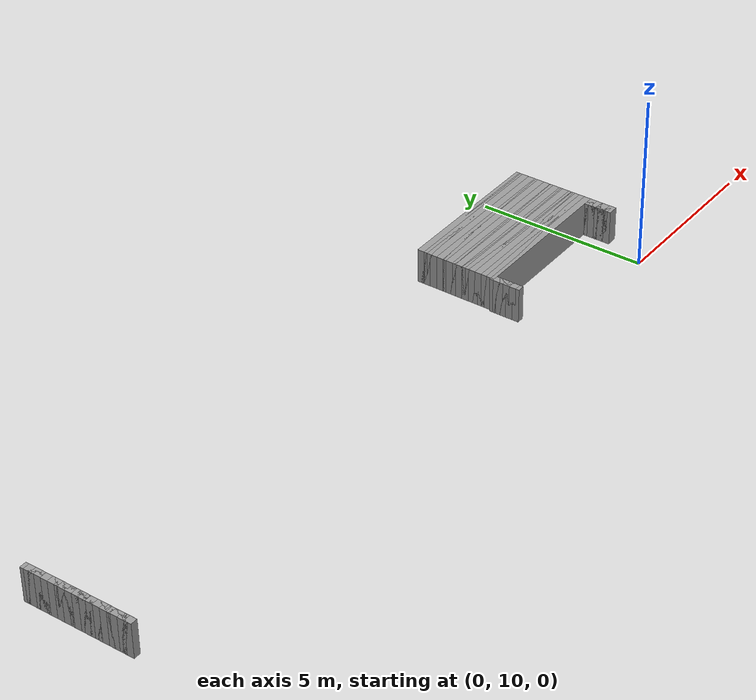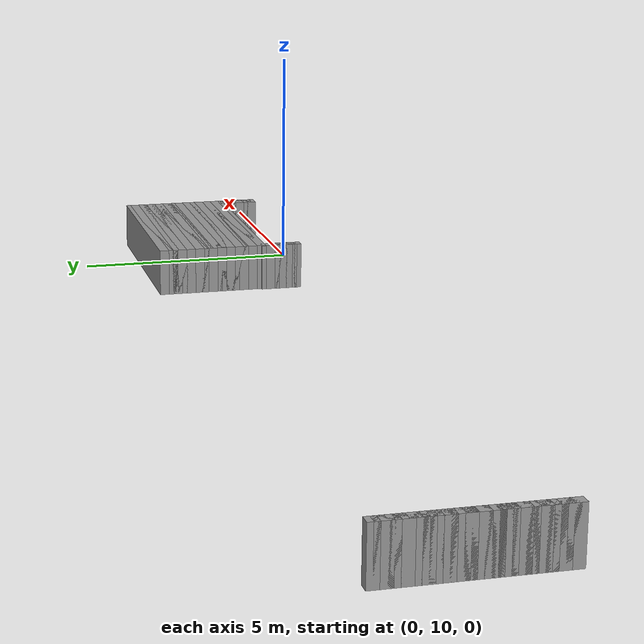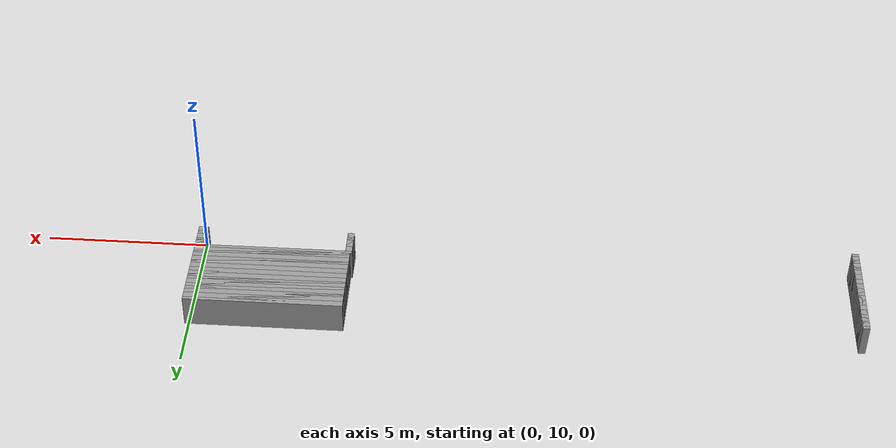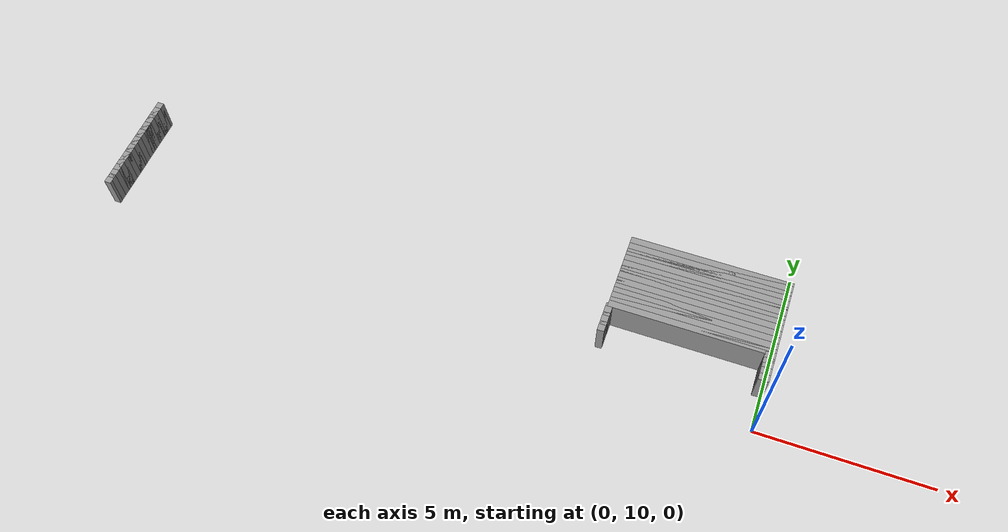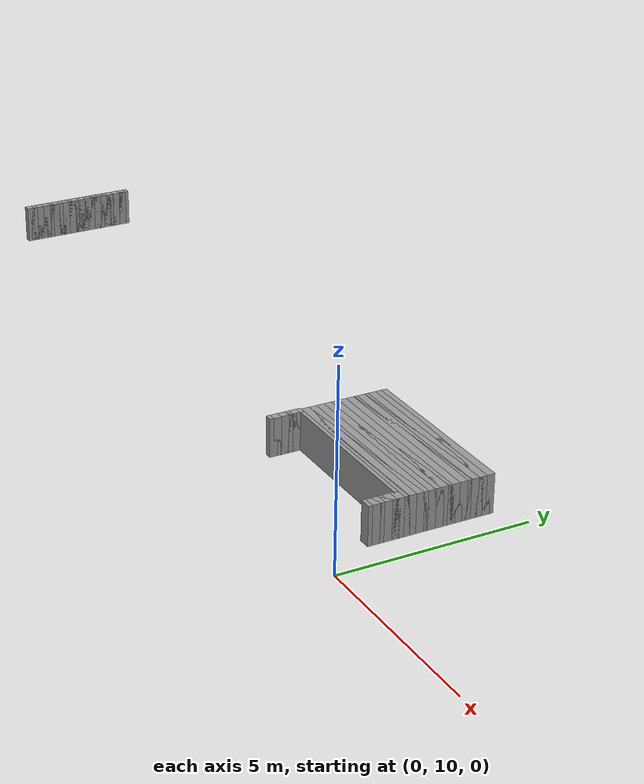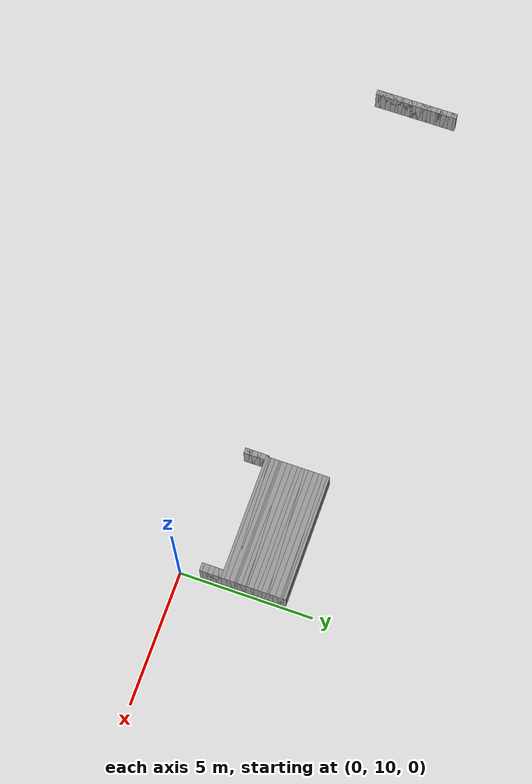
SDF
<sdf version="1.6">
 <world name="GridMap">
  <model name="GridMap">
   <link name="Wall_(198.0,108.0)">
    <collision name="Wall_(198.0,108.0)_Collision">
     <geometry><box><size>0.2 0.2 1.0</size></box></geometry>
     <pose>-19.8 10.8 0.5 0 -0 0</pose>
    </collision>
    <visual name="Wall_(198.0,108.0)_Visual">
     <geometry><box><size>0.2 0.2 1.0</size></box></geometry>
     <pose>-19.8 10.8 0.5 0 -0 0</pose>
     <material>
      <script><uri>file://media/materials/scripts/gazebo.material</uri><name>Gazebo/Grey</name></script>
      <ambient>1 1 1 1</ambient>
     </material>
     <meta><layer>0</layer></meta>
    </visual>
    <pose>0 0 0.5 0 -0 0</pose>
   </link>
   <link name="Wall_(1.5,109.0)">
    <collision name="Wall_(1.5,109.0)_Collision">
     <geometry><box><size>0.3 0.2 1.0</size></box></geometry>
     <pose>-0.15 10.9 0.5 0 -0 0</pose>
    </collision>
    <visual name="Wall_(1.5,109.0)_Visual">
     <geometry><box><size>0.3 0.2 1.0</size></box></geometry>
     <pose>-0.15 10.9 0.5 0 -0 0</pose>
     <material>
      <script><uri>file://media/materials/scripts/gazebo.material</uri><name>Gazebo/Grey</name></script>
      <ambient>1 1 1 1</ambient>
     </material>
     <meta><layer>0</layer></meta>
    </visual>
    <pose>0 0 0.5 0 -0 0</pose>
   </link>
   <link name="Wall_(46.5,109.0)">
    <collision name="Wall_(46.5,109.0)_Collision">
     <geometry><box><size>0.2 0.2 1.0</size></box></geometry>
     <pose>-4.65 10.9 0.5 0 -0 0</pose>
    </collision>
    <visual name="Wall_(46.5,109.0)_Visual">
     <geometry><box><size>0.2 0.2 1.0</size></box></geometry>
     <pose>-4.65 10.9 0.5 0 -0 0</pose>
     <material>
      <script><uri>file://media/materials/scripts/gazebo.material</uri><name>Gazebo/Grey</name></script>
      <ambient>1 1 1 1</ambient>
     </material>
     <meta><layer>0</layer></meta>
    </visual>
    <pose>0 0 0.5 0 -0 0</pose>
   </link>
   <link name="Wall_(198.0,109.0)">
    <collision name="Wall_(198.0,109.0)_Collision">
     <geometry><box><size>0.2 0.2 1.0</size></box></geometry>
     <pose>-19.8 10.9 0.5 0 -0 0</pose>
    </collision>
    <visual name="Wall_(198.0,109.0)_Visual">
     <geometry><box><size>0.2 0.2 1.0</size></box></geometry>
     <pose>-19.8 10.9 0.5 0 -0 0</pose>
     <material>
      <script><uri>file://media/materials/scripts/gazebo.material</uri><name>Gazebo/Grey</name></script>
      <ambient>1 1 1 1</ambient>
     </material>
     <meta><layer>0</layer></meta>
    </visual>
    <pose>0 0 0.5 0 -0 0</pose>
   </link>
   <link name="Wall_(1.5,110.0)">
    <collision name="Wall_(1.5,110.0)_Collision">
     <geometry><box><size>0.3 0.2 1.0</size></box></geometry>
     <pose>-0.15 11.0 0.5 0 -0 0</pose>
    </collision>
    <visual name="Wall_(1.5,110.0)_Visual">
     <geometry><box><size>0.3 0.2 1.0</size></box></geometry>
     <pose>-0.15 11.0 0.5 0 -0 0</pose>
     <material>
      <script><uri>file://media/materials/scripts/gazebo.material</uri><name>Gazebo/Grey</name></script>
      <ambient>1 1 1 1</ambient>
     </material>
     <meta><layer>0</layer></meta>
    </visual>
    <pose>0 0 0.5 0 -0 0</pose>
   </link>
   <link name="Wall_(46.5,110.0)">
    <collision name="Wall_(46.5,110.0)_Collision">
     <geometry><box><size>0.2 0.2 1.0</size></box></geometry>
     <pose>-4.65 11.0 0.5 0 -0 0</pose>
    </collision>
    <visual name="Wall_(46.5,110.0)_Visual">
     <geometry><box><size>0.2 0.2 1.0</size></box></geometry>
     <pose>-4.65 11.0 0.5 0 -0 0</pose>
     <material>
      <script><uri>file://media/materials/scripts/gazebo.material</uri><name>Gazebo/Grey</name></script>
      <ambient>1 1 1 1</ambient>
     </material>
     <meta><layer>0</layer></meta>
    </visual>
    <pose>0 0 0.5 0 -0 0</pose>
   </link>
   <link name="Wall_(198.0,110.0)">
    <collision name="Wall_(198.0,110.0)_Collision">
     <geometry><box><size>0.2 0.2 1.0</size></box></geometry>
     <pose>-19.8 11.0 0.5 0 -0 0</pose>
    </collision>
    <visual name="Wall_(198.0,110.0)_Visual">
     <geometry><box><size>0.2 0.2 1.0</size></box></geometry>
     <pose>-19.8 11.0 0.5 0 -0 0</pose>
     <material>
      <script><uri>file://media/materials/scripts/gazebo.material</uri><name>Gazebo/Grey</name></script>
      <ambient>1 1 1 1</ambient>
     </material>
     <meta><layer>0</layer></meta>
    </visual>
    <pose>0 0 0.5 0 -0 0</pose>
   </link>
   <link name="Wall_(1.5,111.0)">
    <collision name="Wall_(1.5,111.0)_Collision">
     <geometry><box><size>0.3 0.2 1.0</size></box></geometry>
     <pose>-0.15 11.1 0.5 0 -0 0</pose>
    </collision>
    <visual name="Wall_(1.5,111.0)_Visual">
     <geometry><box><size>0.3 0.2 1.0</size></box></geometry>
     <pose>-0.15 11.1 0.5 0 -0 0</pose>
     <material>
      <script><uri>file://media/materials/scripts/gazebo.material</uri><name>Gazebo/Grey</name></script>
      <ambient>1 1 1 1</ambient>
     </material>
     <meta><layer>0</layer></meta>
    </visual>
    <pose>0 0 0.5 0 -0 0</pose>
   </link>
   <link name="Wall_(46.5,111.0)">
    <collision name="Wall_(46.5,111.0)_Collision">
     <geometry><box><size>0.2 0.2 1.0</size></box></geometry>
     <pose>-4.65 11.1 0.5 0 -0 0</pose>
    </collision>
    <visual name="Wall_(46.5,111.0)_Visual">
     <geometry><box><size>0.2 0.2 1.0</size></box></geometry>
     <pose>-4.65 11.1 0.5 0 -0 0</pose>
     <material>
      <script><uri>file://media/materials/scripts/gazebo.material</uri><name>Gazebo/Grey</name></script>
      <ambient>1 1 1 1</ambient>
     </material>
     <meta><layer>0</layer></meta>
    </visual>
    <pose>0 0 0.5 0 -0 0</pose>
   </link>
   <link name="Wall_(198.0,111.0)">
    <collision name="Wall_(198.0,111.0)_Collision">
     <geometry><box><size>0.2 0.2 1.0</size></box></geometry>
     <pose>-19.8 11.1 0.5 0 -0 0</pose>
    </collision>
    <visual name="Wall_(198.0,111.0)_Visual">
     <geometry><box><size>0.2 0.2 1.0</size></box></geometry>
     <pose>-19.8 11.1 0.5 0 -0 0</pose>
     <material>
      <script><uri>file://media/materials/scripts/gazebo.material</uri><name>Gazebo/Grey</name></script>
      <ambient>1 1 1 1</ambient>
     </material>
     <meta><layer>0</layer></meta>
    </visual>
    <pose>0 0 0.5 0 -0 0</pose>
   </link>
   <link name="Wall_(1.5,112.0)">
    <collision name="Wall_(1.5,112.0)_Collision">
     <geometry><box><size>0.3 0.2 1.0</size></box></geometry>
     <pose>-0.15 11.2 0.5 0 -0 0</pose>
    </collision>
    <visual name="Wall_(1.5,112.0)_Visual">
     <geometry><box><size>0.3 0.2 1.0</size></box></geometry>
     <pose>-0.15 11.2 0.5 0 -0 0</pose>
     <material>
      <script><uri>file://media/materials/scripts/gazebo.material</uri><name>Gazebo/Grey</name></script>
      <ambient>1 1 1 1</ambient>
     </material>
     <meta><layer>0</layer></meta>
    </visual>
    <pose>0 0 0.5 0 -0 0</pose>
   </link>
   <link name="Wall_(46.5,112.0)">
    <collision name="Wall_(46.5,112.0)_Collision">
     <geometry><box><size>0.2 0.2 1.0</size></box></geometry>
     <pose>-4.65 11.2 0.5 0 -0 0</pose>
    </collision>
    <visual name="Wall_(46.5,112.0)_Visual">
     <geometry><box><size>0.2 0.2 1.0</size></box></geometry>
     <pose>-4.65 11.2 0.5 0 -0 0</pose>
     <material>
      <script><uri>file://media/materials/scripts/gazebo.material</uri><name>Gazebo/Grey</name></script>
      <ambient>1 1 1 1</ambient>
     </material>
     <meta><layer>0</layer></meta>
    </visual>
    <pose>0 0 0.5 0 -0 0</pose>
   </link>
   <link name="Wall_(198.0,112.0)">
    <collision name="Wall_(198.0,112.0)_Collision">
     <geometry><box><size>0.2 0.2 1.0</size></box></geometry>
     <pose>-19.8 11.2 0.5 0 -0 0</pose>
    </collision>
    <visual name="Wall_(198.0,112.0)_Visual">
     <geometry><box><size>0.2 0.2 1.0</size></box></geometry>
     <pose>-19.8 11.2 0.5 0 -0 0</pose>
     <material>
      <script><uri>file://media/materials/scripts/gazebo.material</uri><name>Gazebo/Grey</name></script>
      <ambient>1 1 1 1</ambient>
     </material>
     <meta><layer>0</layer></meta>
    </visual>
    <pose>0 0 0.5 0 -0 0</pose>
   </link>
   <link name="Wall_(1.5,113.0)">
    <collision name="Wall_(1.5,113.0)_Collision">
     <geometry><box><size>0.3 0.2 1.0</size></box></geometry>
     <pose>-0.15 11.3 0.5 0 -0 0</pose>
    </collision>
    <visual name="Wall_(1.5,113.0)_Visual">
     <geometry><box><size>0.3 0.2 1.0</size></box></geometry>
     <pose>-0.15 11.3 0.5 0 -0 0</pose>
     <material>
      <script><uri>file://media/materials/scripts/gazebo.material</uri><name>Gazebo/Grey</name></script>
      <ambient>1 1 1 1</ambient>
     </material>
     <meta><layer>0</layer></meta>
    </visual>
    <pose>0 0 0.5 0 -0 0</pose>
   </link>
   <link name="Wall_(46.5,113.0)">
    <collision name="Wall_(46.5,113.0)_Collision">
     <geometry><box><size>0.2 0.2 1.0</size></box></geometry>
     <pose>-4.65 11.3 0.5 0 -0 0</pose>
    </collision>
    <visual name="Wall_(46.5,113.0)_Visual">
     <geometry><box><size>0.2 0.2 1.0</size></box></geometry>
     <pose>-4.65 11.3 0.5 0 -0 0</pose>
     <material>
      <script><uri>file://media/materials/scripts/gazebo.material</uri><name>Gazebo/Grey</name></script>
      <ambient>1 1 1 1</ambient>
     </material>
     <meta><layer>0</layer></meta>
    </visual>
    <pose>0 0 0.5 0 -0 0</pose>
   </link>
   <link name="Wall_(198.0,113.0)">
    <collision name="Wall_(198.0,113.0)_Collision">
     <geometry><box><size>0.2 0.2 1.0</size></box></geometry>
     <pose>-19.8 11.3 0.5 0 -0 0</pose>
    </collision>
    <visual name="Wall_(198.0,113.0)_Visual">
     <geometry><box><size>0.2 0.2 1.0</size></box></geometry>
     <pose>-19.8 11.3 0.5 0 -0 0</pose>
     <material>
      <script><uri>file://media/materials/scripts/gazebo.material</uri><name>Gazebo/Grey</name></script>
      <ambient>1 1 1 1</ambient>
     </material>
     <meta><layer>0</layer></meta>
    </visual>
    <pose>0 0 0.5 0 -0 0</pose>
   </link>
   <link name="Wall_(1.5,114.0)">
    <collision name="Wall_(1.5,114.0)_Collision">
     <geometry><box><size>0.3 0.2 1.0</size></box></geometry>
     <pose>-0.15 11.4 0.5 0 -0 0</pose>
    </collision>
    <visual name="Wall_(1.5,114.0)_Visual">
     <geometry><box><size>0.3 0.2 1.0</size></box></geometry>
     <pose>-0.15 11.4 0.5 0 -0 0</pose>
     <material>
      <script><uri>file://media/materials/scripts/gazebo.material</uri><name>Gazebo/Grey</name></script>
      <ambient>1 1 1 1</ambient>
     </material>
     <meta><layer>0</layer></meta>
    </visual>
    <pose>0 0 0.5 0 -0 0</pose>
   </link>
   <link name="Wall_(46.5,114.0)">
    <collision name="Wall_(46.5,114.0)_Collision">
     <geometry><box><size>0.2 0.2 1.0</size></box></geometry>
     <pose>-4.65 11.4 0.5 0 -0 0</pose>
    </collision>
    <visual name="Wall_(46.5,114.0)_Visual">
     <geometry><box><size>0.2 0.2 1.0</size></box></geometry>
     <pose>-4.65 11.4 0.5 0 -0 0</pose>
     <material>
      <script><uri>file://media/materials/scripts/gazebo.material</uri><name>Gazebo/Grey</name></script>
      <ambient>1 1 1 1</ambient>
     </material>
     <meta><layer>0</layer></meta>
    </visual>
    <pose>0 0 0.5 0 -0 0</pose>
   </link>
   <link name="Wall_(198.0,114.0)">
    <collision name="Wall_(198.0,114.0)_Collision">
     <geometry><box><size>0.2 0.2 1.0</size></box></geometry>
     <pose>-19.8 11.4 0.5 0 -0 0</pose>
    </collision>
    <visual name="Wall_(198.0,114.0)_Visual">
     <geometry><box><size>0.2 0.2 1.0</size></box></geometry>
     <pose>-19.8 11.4 0.5 0 -0 0</pose>
     <material>
      <script><uri>file://media/materials/scripts/gazebo.material</uri><name>Gazebo/Grey</name></script>
      <ambient>1 1 1 1</ambient>
     </material>
     <meta><layer>0</layer></meta>
    </visual>
    <pose>0 0 0.5 0 -0 0</pose>
   </link>
   <link name="Wall_(1.5,115.0)">
    <collision name="Wall_(1.5,115.0)_Collision">
     <geometry><box><size>0.3 0.2 1.0</size></box></geometry>
     <pose>-0.15 11.5 0.5 0 -0 0</pose>
    </collision>
    <visual name="Wall_(1.5,115.0)_Visual">
     <geometry><box><size>0.3 0.2 1.0</size></box></geometry>
     <pose>-0.15 11.5 0.5 0 -0 0</pose>
     <material>
      <script><uri>file://media/materials/scripts/gazebo.material</uri><name>Gazebo/Grey</name></script>
      <ambient>1 1 1 1</ambient>
     </material>
     <meta><layer>0</layer></meta>
    </visual>
    <pose>0 0 0.5 0 -0 0</pose>
   </link>
   <link name="Wall_(46.5,115.0)">
    <collision name="Wall_(46.5,115.0)_Collision">
     <geometry><box><size>0.2 0.2 1.0</size></box></geometry>
     <pose>-4.65 11.5 0.5 0 -0 0</pose>
    </collision>
    <visual name="Wall_(46.5,115.0)_Visual">
     <geometry><box><size>0.2 0.2 1.0</size></box></geometry>
     <pose>-4.65 11.5 0.5 0 -0 0</pose>
     <material>
      <script><uri>file://media/materials/scripts/gazebo.material</uri><name>Gazebo/Grey</name></script>
      <ambient>1 1 1 1</ambient>
     </material>
     <meta><layer>0</layer></meta>
    </visual>
    <pose>0 0 0.5 0 -0 0</pose>
   </link>
   <link name="Wall_(198.0,115.0)">
    <collision name="Wall_(198.0,115.0)_Collision">
     <geometry><box><size>0.2 0.2 1.0</size></box></geometry>
     <pose>-19.8 11.5 0.5 0 -0 0</pose>
    </collision>
    <visual name="Wall_(198.0,115.0)_Visual">
     <geometry><box><size>0.2 0.2 1.0</size></box></geometry>
     <pose>-19.8 11.5 0.5 0 -0 0</pose>
     <material>
      <script><uri>file://media/materials/scripts/gazebo.material</uri><name>Gazebo/Grey</name></script>
      <ambient>1 1 1 1</ambient>
     </material>
     <meta><layer>0</layer></meta>
    </visual>
    <pose>0 0 0.5 0 -0 0</pose>
   </link>
   <link name="Wall_(1.5,116.0)">
    <collision name="Wall_(1.5,116.0)_Collision">
     <geometry><box><size>0.3 0.2 1.0</size></box></geometry>
     <pose>-0.15 11.6 0.5 0 -0 0</pose>
    </collision>
    <visual name="Wall_(1.5,116.0)_Visual">
     <geometry><box><size>0.3 0.2 1.0</size></box></geometry>
     <pose>-0.15 11.6 0.5 0 -0 0</pose>
     <material>
      <script><uri>file://media/materials/scripts/gazebo.material</uri><name>Gazebo/Grey</name></script>
      <ambient>1 1 1 1</ambient>
     </material>
     <meta><layer>0</layer></meta>
    </visual>
    <pose>0 0 0.5 0 -0 0</pose>
   </link>
   <link name="Wall_(46.5,116.0)">
    <collision name="Wall_(46.5,116.0)_Collision">
     <geometry><box><size>0.2 0.2 1.0</size></box></geometry>
     <pose>-4.65 11.6 0.5 0 -0 0</pose>
    </collision>
    <visual name="Wall_(46.5,116.0)_Visual">
     <geometry><box><size>0.2 0.2 1.0</size></box></geometry>
     <pose>-4.65 11.6 0.5 0 -0 0</pose>
     <material>
      <script><uri>file://media/materials/scripts/gazebo.material</uri><name>Gazebo/Grey</name></script>
      <ambient>1 1 1 1</ambient>
     </material>
     <meta><layer>0</layer></meta>
    </visual>
    <pose>0 0 0.5 0 -0 0</pose>
   </link>
   <link name="Wall_(198.0,116.0)">
    <collision name="Wall_(198.0,116.0)_Collision">
     <geometry><box><size>0.2 0.2 1.0</size></box></geometry>
     <pose>-19.8 11.6 0.5 0 -0 0</pose>
    </collision>
    <visual name="Wall_(198.0,116.0)_Visual">
     <geometry><box><size>0.2 0.2 1.0</size></box></geometry>
     <pose>-19.8 11.6 0.5 0 -0 0</pose>
     <material>
      <script><uri>file://media/materials/scripts/gazebo.material</uri><name>Gazebo/Grey</name></script>
      <ambient>1 1 1 1</ambient>
     </material>
     <meta><layer>0</layer></meta>
    </visual>
    <pose>0 0 0.5 0 -0 0</pose>
   </link>
   <link name="Wall_(23.5,117.0)">
    <collision name="Wall_(23.5,117.0)_Collision">
     <geometry><box><size>4.7 0.2 1.0</size></box></geometry>
     <pose>-2.35 11.7 0.5 0 -0 0</pose>
    </collision>
    <visual name="Wall_(23.5,117.0)_Visual">
     <geometry><box><size>4.7 0.2 1.0</size></box></geometry>
     <pose>-2.35 11.7 0.5 0 -0 0</pose>
     <material>
      <script><uri>file://media/materials/scripts/gazebo.material</uri><name>Gazebo/Grey</name></script>
      <ambient>1 1 1 1</ambient>
     </material>
     <meta><layer>0</layer></meta>
    </visual>
    <pose>0 0 0.5 0 -0 0</pose>
   </link>
   <link name="Wall_(198.0,117.0)">
    <collision name="Wall_(198.0,117.0)_Collision">
     <geometry><box><size>0.2 0.2 1.0</size></box></geometry>
     <pose>-19.8 11.7 0.5 0 -0 0</pose>
    </collision>
    <visual name="Wall_(198.0,117.0)_Visual">
     <geometry><box><size>0.2 0.2 1.0</size></box></geometry>
     <pose>-19.8 11.7 0.5 0 -0 0</pose>
     <material>
      <script><uri>file://media/materials/scripts/gazebo.material</uri><name>Gazebo/Grey</name></script>
      <ambient>1 1 1 1</ambient>
     </material>
     <meta><layer>0</layer></meta>
    </visual>
    <pose>0 0 0.5 0 -0 0</pose>
   </link>
   <link name="Wall_(23.5,118.0)">
    <collision name="Wall_(23.5,118.0)_Collision">
     <geometry><box><size>4.7 0.2 1.0</size></box></geometry>
     <pose>-2.35 11.8 0.5 0 -0 0</pose>
    </collision>
    <visual name="Wall_(23.5,118.0)_Visual">
     <geometry><box><size>4.7 0.2 1.0</size></box></geometry>
     <pose>-2.35 11.8 0.5 0 -0 0</pose>
     <material>
      <script><uri>file://media/materials/scripts/gazebo.material</uri><name>Gazebo/Grey</name></script>
      <ambient>1 1 1 1</ambient>
     </material>
     <meta><layer>0</layer></meta>
    </visual>
    <pose>0 0 0.5 0 -0 0</pose>
   </link>
   <link name="Wall_(198.0,118.0)">
    <collision name="Wall_(198.0,118.0)_Collision">
     <geometry><box><size>0.2 0.2 1.0</size></box></geometry>
     <pose>-19.8 11.8 0.5 0 -0 0</pose>
    </collision>
    <visual name="Wall_(198.0,118.0)_Visual">
     <geometry><box><size>0.2 0.2 1.0</size></box></geometry>
     <pose>-19.8 11.8 0.5 0 -0 0</pose>
     <material>
      <script><uri>file://media/materials/scripts/gazebo.material</uri><name>Gazebo/Grey</name></script>
      <ambient>1 1 1 1</ambient>
     </material>
     <meta><layer>0</layer></meta>
    </visual>
    <pose>0 0 0.5 0 -0 0</pose>
   </link>
   <link name="Wall_(23.5,119.0)">
    <collision name="Wall_(23.5,119.0)_Collision">
     <geometry><box><size>4.7 0.2 1.0</size></box></geometry>
     <pose>-2.35 11.9 0.5 0 -0 0</pose>
    </collision>
    <visual name="Wall_(23.5,119.0)_Visual">
     <geometry><box><size>4.7 0.2 1.0</size></box></geometry>
     <pose>-2.35 11.9 0.5 0 -0 0</pose>
     <material>
      <script><uri>file://media/materials/scripts/gazebo.material</uri><name>Gazebo/Grey</name></script>
      <ambient>1 1 1 1</ambient>
     </material>
     <meta><layer>0</layer></meta>
    </visual>
    <pose>0 0 0.5 0 -0 0</pose>
   </link>
   <link name="Wall_(198.0,119.0)">
    <collision name="Wall_(198.0,119.0)_Collision">
     <geometry><box><size>0.2 0.2 1.0</size></box></geometry>
     <pose>-19.8 11.9 0.5 0 -0 0</pose>
    </collision>
    <visual name="Wall_(198.0,119.0)_Visual">
     <geometry><box><size>0.2 0.2 1.0</size></box></geometry>
     <pose>-19.8 11.9 0.5 0 -0 0</pose>
     <material>
      <script><uri>file://media/materials/scripts/gazebo.material</uri><name>Gazebo/Grey</name></script>
      <ambient>1 1 1 1</ambient>
     </material>
     <meta><layer>0</layer></meta>
    </visual>
    <pose>0 0 0.5 0 -0 0</pose>
   </link>
   <link name="Wall_(23.5,120.0)">
    <collision name="Wall_(23.5,120.0)_Collision">
     <geometry><box><size>4.7 0.2 1.0</size></box></geometry>
     <pose>-2.35 12.0 0.5 0 -0 0</pose>
    </collision>
    <visual name="Wall_(23.5,120.0)_Visual">
     <geometry><box><size>4.7 0.2 1.0</size></box></geometry>
     <pose>-2.35 12.0 0.5 0 -0 0</pose>
     <material>
      <script><uri>file://media/materials/scripts/gazebo.material</uri><name>Gazebo/Grey</name></script>
      <ambient>1 1 1 1</ambient>
     </material>
     <meta><layer>0</layer></meta>
    </visual>
    <pose>0 0 0.5 0 -0 0</pose>
   </link>
   <link name="Wall_(198.0,120.0)">
    <collision name="Wall_(198.0,120.0)_Collision">
     <geometry><box><size>0.2 0.2 1.0</size></box></geometry>
     <pose>-19.8 12.0 0.5 0 -0 0</pose>
    </collision>
    <visual name="Wall_(198.0,120.0)_Visual">
     <geometry><box><size>0.2 0.2 1.0</size></box></geometry>
     <pose>-19.8 12.0 0.5 0 -0 0</pose>
     <material>
      <script><uri>file://media/materials/scripts/gazebo.material</uri><name>Gazebo/Grey</name></script>
      <ambient>1 1 1 1</ambient>
     </material>
     <meta><layer>0</layer></meta>
    </visual>
    <pose>0 0 0.5 0 -0 0</pose>
   </link>
   <link name="Wall_(23.5,121.0)">
    <collision name="Wall_(23.5,121.0)_Collision">
     <geometry><box><size>4.7 0.2 1.0</size></box></geometry>
     <pose>-2.35 12.1 0.5 0 -0 0</pose>
    </collision>
    <visual name="Wall_(23.5,121.0)_Visual">
     <geometry><box><size>4.7 0.2 1.0</size></box></geometry>
     <pose>-2.35 12.1 0.5 0 -0 0</pose>
     <material>
      <script><uri>file://media/materials/scripts/gazebo.material</uri><name>Gazebo/Grey</name></script>
      <ambient>1 1 1 1</ambient>
     </material>
     <meta><layer>0</layer></meta>
    </visual>
    <pose>0 0 0.5 0 -0 0</pose>
   </link>
   <link name="Wall_(198.0,121.0)">
    <collision name="Wall_(198.0,121.0)_Collision">
     <geometry><box><size>0.2 0.2 1.0</size></box></geometry>
     <pose>-19.8 12.1 0.5 0 -0 0</pose>
    </collision>
    <visual name="Wall_(198.0,121.0)_Visual">
     <geometry><box><size>0.2 0.2 1.0</size></box></geometry>
     <pose>-19.8 12.1 0.5 0 -0 0</pose>
     <material>
      <script><uri>file://media/materials/scripts/gazebo.material</uri><name>Gazebo/Grey</name></script>
      <ambient>1 1 1 1</ambient>
     </material>
     <meta><layer>0</layer></meta>
    </visual>
    <pose>0 0 0.5 0 -0 0</pose>
   </link>
   <link name="Wall_(23.5,122.0)">
    <collision name="Wall_(23.5,122.0)_Collision">
     <geometry><box><size>4.7 0.2 1.0</size></box></geometry>
     <pose>-2.35 12.2 0.5 0 -0 0</pose>
    </collision>
    <visual name="Wall_(23.5,122.0)_Visual">
     <geometry><box><size>4.7 0.2 1.0</size></box></geometry>
     <pose>-2.35 12.2 0.5 0 -0 0</pose>
     <material>
      <script><uri>file://media/materials/scripts/gazebo.material</uri><name>Gazebo/Grey</name></script>
      <ambient>1 1 1 1</ambient>
     </material>
     <meta><layer>0</layer></meta>
    </visual>
    <pose>0 0 0.5 0 -0 0</pose>
   </link>
   <link name="Wall_(198.0,122.0)">
    <collision name="Wall_(198.0,122.0)_Collision">
     <geometry><box><size>0.2 0.2 1.0</size></box></geometry>
     <pose>-19.8 12.2 0.5 0 -0 0</pose>
    </collision>
    <visual name="Wall_(198.0,122.0)_Visual">
     <geometry><box><size>0.2 0.2 1.0</size></box></geometry>
     <pose>-19.8 12.2 0.5 0 -0 0</pose>
     <material>
      <script><uri>file://media/materials/scripts/gazebo.material</uri><name>Gazebo/Grey</name></script>
      <ambient>1 1 1 1</ambient>
     </material>
     <meta><layer>0</layer></meta>
    </visual>
    <pose>0 0 0.5 0 -0 0</pose>
   </link>
   <link name="Wall_(23.5,123.0)">
    <collision name="Wall_(23.5,123.0)_Collision">
     <geometry><box><size>4.7 0.2 1.0</size></box></geometry>
     <pose>-2.35 12.3 0.5 0 -0 0</pose>
    </collision>
    <visual name="Wall_(23.5,123.0)_Visual">
     <geometry><box><size>4.7 0.2 1.0</size></box></geometry>
     <pose>-2.35 12.3 0.5 0 -0 0</pose>
     <material>
      <script><uri>file://media/materials/scripts/gazebo.material</uri><name>Gazebo/Grey</name></script>
      <ambient>1 1 1 1</ambient>
     </material>
     <meta><layer>0</layer></meta>
    </visual>
    <pose>0 0 0.5 0 -0 0</pose>
   </link>
   <link name="Wall_(198.0,123.0)">
    <collision name="Wall_(198.0,123.0)_Collision">
     <geometry><box><size>0.2 0.2 1.0</size></box></geometry>
     <pose>-19.8 12.3 0.5 0 -0 0</pose>
    </collision>
    <visual name="Wall_(198.0,123.0)_Visual">
     <geometry><box><size>0.2 0.2 1.0</size></box></geometry>
     <pose>-19.8 12.3 0.5 0 -0 0</pose>
     <material>
      <script><uri>file://media/materials/scripts/gazebo.material</uri><name>Gazebo/Grey</name></script>
      <ambient>1 1 1 1</ambient>
     </material>
     <meta><layer>0</layer></meta>
    </visual>
    <pose>0 0 0.5 0 -0 0</pose>
   </link>
   <link name="Wall_(23.5,124.0)">
    <collision name="Wall_(23.5,124.0)_Collision">
     <geometry><box><size>4.7 0.2 1.0</size></box></geometry>
     <pose>-2.35 12.4 0.5 0 -0 0</pose>
    </collision>
    <visual name="Wall_(23.5,124.0)_Visual">
     <geometry><box><size>4.7 0.2 1.0</size></box></geometry>
     <pose>-2.35 12.4 0.5 0 -0 0</pose>
     <material>
      <script><uri>file://media/materials/scripts/gazebo.material</uri><name>Gazebo/Grey</name></script>
      <ambient>1 1 1 1</ambient>
     </material>
     <meta><layer>0</layer></meta>
    </visual>
    <pose>0 0 0.5 0 -0 0</pose>
   </link>
   <link name="Wall_(198.0,124.0)">
    <collision name="Wall_(198.0,124.0)_Collision">
     <geometry><box><size>0.2 0.2 1.0</size></box></geometry>
     <pose>-19.8 12.4 0.5 0 -0 0</pose>
    </collision>
    <visual name="Wall_(198.0,124.0)_Visual">
     <geometry><box><size>0.2 0.2 1.0</size></box></geometry>
     <pose>-19.8 12.4 0.5 0 -0 0</pose>
     <material>
      <script><uri>file://media/materials/scripts/gazebo.material</uri><name>Gazebo/Grey</name></script>
      <ambient>1 1 1 1</ambient>
     </material>
     <meta><layer>0</layer></meta>
    </visual>
    <pose>0 0 0.5 0 -0 0</pose>
   </link>
   <link name="Wall_(23.5,125.0)">
    <collision name="Wall_(23.5,125.0)_Collision">
     <geometry><box><size>4.7 0.2 1.0</size></box></geometry>
     <pose>-2.35 12.5 0.5 0 -0 0</pose>
    </collision>
    <visual name="Wall_(23.5,125.0)_Visual">
     <geometry><box><size>4.7 0.2 1.0</size></box></geometry>
     <pose>-2.35 12.5 0.5 0 -0 0</pose>
     <material>
      <script><uri>file://media/materials/scripts/gazebo.material</uri><name>Gazebo/Grey</name></script>
      <ambient>1 1 1 1</ambient>
     </material>
     <meta><layer>0</layer></meta>
    </visual>
    <pose>0 0 0.5 0 -0 0</pose>
   </link>
   <link name="Wall_(198.0,125.0)">
    <collision name="Wall_(198.0,125.0)_Collision">
     <geometry><box><size>0.2 0.2 1.0</size></box></geometry>
     <pose>-19.8 12.5 0.5 0 -0 0</pose>
    </collision>
    <visual name="Wall_(198.0,125.0)_Visual">
     <geometry><box><size>0.2 0.2 1.0</size></box></geometry>
     <pose>-19.8 12.5 0.5 0 -0 0</pose>
     <material>
      <script><uri>file://media/materials/scripts/gazebo.material</uri><name>Gazebo/Grey</name></script>
      <ambient>1 1 1 1</ambient>
     </material>
     <meta><layer>0</layer></meta>
    </visual>
    <pose>0 0 0.5 0 -0 0</pose>
   </link>
   <link name="Wall_(23.5,126.0)">
    <collision name="Wall_(23.5,126.0)_Collision">
     <geometry><box><size>4.7 0.2 1.0</size></box></geometry>
     <pose>-2.35 12.6 0.5 0 -0 0</pose>
    </collision>
    <visual name="Wall_(23.5,126.0)_Visual">
     <geometry><box><size>4.7 0.2 1.0</size></box></geometry>
     <pose>-2.35 12.6 0.5 0 -0 0</pose>
     <material>
      <script><uri>file://media/materials/scripts/gazebo.material</uri><name>Gazebo/Grey</name></script>
      <ambient>1 1 1 1</ambient>
     </material>
     <meta><layer>0</layer></meta>
    </visual>
    <pose>0 0 0.5 0 -0 0</pose>
   </link>
   <link name="Wall_(198.0,126.0)">
    <collision name="Wall_(198.0,126.0)_Collision">
     <geometry><box><size>0.2 0.2 1.0</size></box></geometry>
     <pose>-19.8 12.6 0.5 0 -0 0</pose>
    </collision>
    <visual name="Wall_(198.0,126.0)_Visual">
     <geometry><box><size>0.2 0.2 1.0</size></box></geometry>
     <pose>-19.8 12.6 0.5 0 -0 0</pose>
     <material>
      <script><uri>file://media/materials/scripts/gazebo.material</uri><name>Gazebo/Grey</name></script>
      <ambient>1 1 1 1</ambient>
     </material>
     <meta><layer>0</layer></meta>
    </visual>
    <pose>0 0 0.5 0 -0 0</pose>
   </link>
   <link name="Wall_(23.5,127.0)">
    <collision name="Wall_(23.5,127.0)_Collision">
     <geometry><box><size>4.7 0.2 1.0</size></box></geometry>
     <pose>-2.35 12.7 0.5 0 -0 0</pose>
    </collision>
    <visual name="Wall_(23.5,127.0)_Visual">
     <geometry><box><size>4.7 0.2 1.0</size></box></geometry>
     <pose>-2.35 12.7 0.5 0 -0 0</pose>
     <material>
      <script><uri>file://media/materials/scripts/gazebo.material</uri><name>Gazebo/Grey</name></script>
      <ambient>1 1 1 1</ambient>
     </material>
     <meta><layer>0</layer></meta>
    </visual>
    <pose>0 0 0.5 0 -0 0</pose>
   </link>
   <link name="Wall_(198.0,127.0)">
    <collision name="Wall_(198.0,127.0)_Collision">
     <geometry><box><size>0.2 0.2 1.0</size></box></geometry>
     <pose>-19.8 12.7 0.5 0 -0 0</pose>
    </collision>
    <visual name="Wall_(198.0,127.0)_Visual">
     <geometry><box><size>0.2 0.2 1.0</size></box></geometry>
     <pose>-19.8 12.7 0.5 0 -0 0</pose>
     <material>
      <script><uri>file://media/materials/scripts/gazebo.material</uri><name>Gazebo/Grey</name></script>
      <ambient>1 1 1 1</ambient>
     </material>
     <meta><layer>0</layer></meta>
    </visual>
    <pose>0 0 0.5 0 -0 0</pose>
   </link>
   <link name="Wall_(23.5,128.0)">
    <collision name="Wall_(23.5,128.0)_Collision">
     <geometry><box><size>4.7 0.2 1.0</size></box></geometry>
     <pose>-2.35 12.8 0.5 0 -0 0</pose>
    </collision>
    <visual name="Wall_(23.5,128.0)_Visual">
     <geometry><box><size>4.7 0.2 1.0</size></box></geometry>
     <pose>-2.35 12.8 0.5 0 -0 0</pose>
     <material>
      <script><uri>file://media/materials/scripts/gazebo.material</uri><name>Gazebo/Grey</name></script>
      <ambient>1 1 1 1</ambient>
     </material>
     <meta><layer>0</layer></meta>
    </visual>
    <pose>0 0 0.5 0 -0 0</pose>
   </link>
   <link name="Wall_(198.0,128.0)">
    <collision name="Wall_(198.0,128.0)_Collision">
     <geometry><box><size>0.2 0.2 1.0</size></box></geometry>
     <pose>-19.8 12.8 0.5 0 -0 0</pose>
    </collision>
    <visual name="Wall_(198.0,128.0)_Visual">
     <geometry><box><size>0.2 0.2 1.0</size></box></geometry>
     <pose>-19.8 12.8 0.5 0 -0 0</pose>
     <material>
      <script><uri>file://media/materials/scripts/gazebo.material</uri><name>Gazebo/Grey</name></script>
      <ambient>1 1 1 1</ambient>
     </material>
     <meta><layer>0</layer></meta>
    </visual>
    <pose>0 0 0.5 0 -0 0</pose>
   </link>
   <link name="Wall_(23.5,129.0)">
    <collision name="Wall_(23.5,129.0)_Collision">
     <geometry><box><size>4.7 0.2 1.0</size></box></geometry>
     <pose>-2.35 12.9 0.5 0 -0 0</pose>
    </collision>
    <visual name="Wall_(23.5,129.0)_Visual">
     <geometry><box><size>4.7 0.2 1.0</size></box></geometry>
     <pose>-2.35 12.9 0.5 0 -0 0</pose>
     <material>
      <script><uri>file://media/materials/scripts/gazebo.material</uri><name>Gazebo/Grey</name></script>
      <ambient>1 1 1 1</ambient>
     </material>
     <meta><layer>0</layer></meta>
    </visual>
    <pose>0 0 0.5 0 -0 0</pose>
   </link>
   <link name="Wall_(198.0,129.0)">
    <collision name="Wall_(198.0,129.0)_Collision">
     <geometry><box><size>0.2 0.2 1.0</size></box></geometry>
     <pose>-19.8 12.9 0.5 0 -0 0</pose>
    </collision>
    <visual name="Wall_(198.0,129.0)_Visual">
     <geometry><box><size>0.2 0.2 1.0</size></box></geometry>
     <pose>-19.8 12.9 0.5 0 -0 0</pose>
     <material>
      <script><uri>file://media/materials/scripts/gazebo.material</uri><name>Gazebo/Grey</name></script>
      <ambient>1 1 1 1</ambient>
     </material>
     <meta><layer>0</layer></meta>
    </visual>
    <pose>0 0 0.5 0 -0 0</pose>
   </link>
   <link name="Wall_(23.5,130.0)">
    <collision name="Wall_(23.5,130.0)_Collision">
     <geometry><box><size>4.7 0.2 1.0</size></box></geometry>
     <pose>-2.35 13.0 0.5 0 -0 0</pose>
    </collision>
    <visual name="Wall_(23.5,130.0)_Visual">
     <geometry><box><size>4.7 0.2 1.0</size></box></geometry>
     <pose>-2.35 13.0 0.5 0 -0 0</pose>
     <material>
      <script><uri>file://media/materials/scripts/gazebo.material</uri><name>Gazebo/Grey</name></script>
      <ambient>1 1 1 1</ambient>
     </material>
     <meta><layer>0</layer></meta>
    </visual>
    <pose>0 0 0.5 0 -0 0</pose>
   </link>
   <link name="Wall_(198.0,130.0)">
    <collision name="Wall_(198.0,130.0)_Collision">
     <geometry><box><size>0.2 0.2 1.0</size></box></geometry>
     <pose>-19.8 13.0 0.5 0 -0 0</pose>
    </collision>
    <visual name="Wall_(198.0,130.0)_Visual">
     <geometry><box><size>0.2 0.2 1.0</size></box></geometry>
     <pose>-19.8 13.0 0.5 0 -0 0</pose>
     <material>
      <script><uri>file://media/materials/scripts/gazebo.material</uri><name>Gazebo/Grey</name></script>
      <ambient>1 1 1 1</ambient>
     </material>
     <meta><layer>0</layer></meta>
    </visual>
    <pose>0 0 0.5 0 -0 0</pose>
   </link>
   <link name="Wall_(23.5,131.0)">
    <collision name="Wall_(23.5,131.0)_Collision">
     <geometry><box><size>4.7 0.2 1.0</size></box></geometry>
     <pose>-2.35 13.1 0.5 0 -0 0</pose>
    </collision>
    <visual name="Wall_(23.5,131.0)_Visual">
     <geometry><box><size>4.7 0.2 1.0</size></box></geometry>
     <pose>-2.35 13.1 0.5 0 -0 0</pose>
     <material>
      <script><uri>file://media/materials/scripts/gazebo.material</uri><name>Gazebo/Grey</name></script>
      <ambient>1 1 1 1</ambient>
     </material>
     <meta><layer>0</layer></meta>
    </visual>
    <pose>0 0 0.5 0 -0 0</pose>
   </link>
   <link name="Wall_(198.0,131.0)">
    <collision name="Wall_(198.0,131.0)_Collision">
     <geometry><box><size>0.2 0.2 1.0</size></box></geometry>
     <pose>-19.8 13.1 0.5 0 -0 0</pose>
    </collision>
    <visual name="Wall_(198.0,131.0)_Visual">
     <geometry><box><size>0.2 0.2 1.0</size></box></geometry>
     <pose>-19.8 13.1 0.5 0 -0 0</pose>
     <material>
      <script><uri>file://media/materials/scripts/gazebo.material</uri><name>Gazebo/Grey</name></script>
      <ambient>1 1 1 1</ambient>
     </material>
     <meta><layer>0</layer></meta>
    </visual>
    <pose>0 0 0.5 0 -0 0</pose>
   </link>
   <link name="Wall_(23.5,132.0)">
    <collision name="Wall_(23.5,132.0)_Collision">
     <geometry><box><size>4.7 0.2 1.0</size></box></geometry>
     <pose>-2.35 13.2 0.5 0 -0 0</pose>
    </collision>
    <visual name="Wall_(23.5,132.0)_Visual">
     <geometry><box><size>4.7 0.2 1.0</size></box></geometry>
     <pose>-2.35 13.2 0.5 0 -0 0</pose>
     <material>
      <script><uri>file://media/materials/scripts/gazebo.material</uri><name>Gazebo/Grey</name></script>
      <ambient>1 1 1 1</ambient>
     </material>
     <meta><layer>0</layer></meta>
    </visual>
    <pose>0 0 0.5 0 -0 0</pose>
   </link>
   <link name="Wall_(198.0,132.0)">
    <collision name="Wall_(198.0,132.0)_Collision">
     <geometry><box><size>0.2 0.2 1.0</size></box></geometry>
     <pose>-19.8 13.2 0.5 0 -0 0</pose>
    </collision>
    <visual name="Wall_(198.0,132.0)_Visual">
     <geometry><box><size>0.2 0.2 1.0</size></box></geometry>
     <pose>-19.8 13.2 0.5 0 -0 0</pose>
     <material>
      <script><uri>file://media/materials/scripts/gazebo.material</uri><name>Gazebo/Grey</name></script>
      <ambient>1 1 1 1</ambient>
     </material>
     <meta><layer>0</layer></meta>
    </visual>
    <pose>0 0 0.5 0 -0 0</pose>
   </link>
   <link name="Wall_(23.5,133.0)">
    <collision name="Wall_(23.5,133.0)_Collision">
     <geometry><box><size>4.7 0.2 1.0</size></box></geometry>
     <pose>-2.35 13.3 0.5 0 -0 0</pose>
    </collision>
    <visual name="Wall_(23.5,133.0)_Visual">
     <geometry><box><size>4.7 0.2 1.0</size></box></geometry>
     <pose>-2.35 13.3 0.5 0 -0 0</pose>
     <material>
      <script><uri>file://media/materials/scripts/gazebo.material</uri><name>Gazebo/Grey</name></script>
      <ambient>1 1 1 1</ambient>
     </material>
     <meta><layer>0</layer></meta>
    </visual>
    <pose>0 0 0.5 0 -0 0</pose>
   </link>
   <link name="Wall_(198.0,133.0)">
    <collision name="Wall_(198.0,133.0)_Collision">
     <geometry><box><size>0.2 0.2 1.0</size></box></geometry>
     <pose>-19.8 13.3 0.5 0 -0 0</pose>
    </collision>
    <visual name="Wall_(198.0,133.0)_Visual">
     <geometry><box><size>0.2 0.2 1.0</size></box></geometry>
     <pose>-19.8 13.3 0.5 0 -0 0</pose>
     <material>
      <script><uri>file://media/materials/scripts/gazebo.material</uri><name>Gazebo/Grey</name></script>
      <ambient>1 1 1 1</ambient>
     </material>
     <meta><layer>0</layer></meta>
    </visual>
    <pose>0 0 0.5 0 -0 0</pose>
   </link>
   <link name="Wall_(23.5,134.0)">
    <collision name="Wall_(23.5,134.0)_Collision">
     <geometry><box><size>4.7 0.2 1.0</size></box></geometry>
     <pose>-2.35 13.4 0.5 0 -0 0</pose>
    </collision>
    <visual name="Wall_(23.5,134.0)_Visual">
     <geometry><box><size>4.7 0.2 1.0</size></box></geometry>
     <pose>-2.35 13.4 0.5 0 -0 0</pose>
     <material>
      <script><uri>file://media/materials/scripts/gazebo.material</uri><name>Gazebo/Grey</name></script>
      <ambient>1 1 1 1</ambient>
     </material>
     <meta><layer>0</layer></meta>
    </visual>
    <pose>0 0 0.5 0 -0 0</pose>
   </link>
   <link name="Wall_(198.0,134.0)">
    <collision name="Wall_(198.0,134.0)_Collision">
     <geometry><box><size>0.2 0.2 1.0</size></box></geometry>
     <pose>-19.8 13.4 0.5 0 -0 0</pose>
    </collision>
    <visual name="Wall_(198.0,134.0)_Visual">
     <geometry><box><size>0.2 0.2 1.0</size></box></geometry>
     <pose>-19.8 13.4 0.5 0 -0 0</pose>
     <material>
      <script><uri>file://media/materials/scripts/gazebo.material</uri><name>Gazebo/Grey</name></script>
      <ambient>1 1 1 1</ambient>
     </material>
     <meta><layer>0</layer></meta>
    </visual>
    <pose>0 0 0.5 0 -0 0</pose>
   </link>
   <link name="Wall_(23.5,135.0)">
    <collision name="Wall_(23.5,135.0)_Collision">
     <geometry><box><size>4.7 0.2 1.0</size></box></geometry>
     <pose>-2.35 13.5 0.5 0 -0 0</pose>
    </collision>
    <visual name="Wall_(23.5,135.0)_Visual">
     <geometry><box><size>4.7 0.2 1.0</size></box></geometry>
     <pose>-2.35 13.5 0.5 0 -0 0</pose>
     <material>
      <script><uri>file://media/materials/scripts/gazebo.material</uri><name>Gazebo/Grey</name></script>
      <ambient>1 1 1 1</ambient>
     </material>
     <meta><layer>0</layer></meta>
    </visual>
    <pose>0 0 0.5 0 -0 0</pose>
   </link>
   <link name="Wall_(198.0,135.0)">
    <collision name="Wall_(198.0,135.0)_Collision">
     <geometry><box><size>0.2 0.2 1.0</size></box></geometry>
     <pose>-19.8 13.5 0.5 0 -0 0</pose>
    </collision>
    <visual name="Wall_(198.0,135.0)_Visual">
     <geometry><box><size>0.2 0.2 1.0</size></box></geometry>
     <pose>-19.8 13.5 0.5 0 -0 0</pose>
     <material>
      <script><uri>file://media/materials/scripts/gazebo.material</uri><name>Gazebo/Grey</name></script>
      <ambient>1 1 1 1</ambient>
     </material>
     <meta><layer>0</layer></meta>
    </visual>
    <pose>0 0 0.5 0 -0 0</pose>
   </link>
   <link name="Wall_(23.5,136.0)">
    <collision name="Wall_(23.5,136.0)_Collision">
     <geometry><box><size>4.7 0.2 1.0</size></box></geometry>
     <pose>-2.35 13.6 0.5 0 -0 0</pose>
    </collision>
    <visual name="Wall_(23.5,136.0)_Visual">
     <geometry><box><size>4.7 0.2 1.0</size></box></geometry>
     <pose>-2.35 13.6 0.5 0 -0 0</pose>
     <material>
      <script><uri>file://media/materials/scripts/gazebo.material</uri><name>Gazebo/Grey</name></script>
      <ambient>1 1 1 1</ambient>
     </material>
     <meta><layer>0</layer></meta>
    </visual>
    <pose>0 0 0.5 0 -0 0</pose>
   </link>
   <link name="Wall_(198.0,136.0)">
    <collision name="Wall_(198.0,136.0)_Collision">
     <geometry><box><size>0.2 0.2 1.0</size></box></geometry>
     <pose>-19.8 13.6 0.5 0 -0 0</pose>
    </collision>
    <visual name="Wall_(198.0,136.0)_Visual">
     <geometry><box><size>0.2 0.2 1.0</size></box></geometry>
     <pose>-19.8 13.6 0.5 0 -0 0</pose>
     <material>
      <script><uri>file://media/materials/scripts/gazebo.material</uri><name>Gazebo/Grey</name></script>
      <ambient>1 1 1 1</ambient>
     </material>
     <meta><layer>0</layer></meta>
    </visual>
    <pose>0 0 0.5 0 -0 0</pose>
   </link>
   <link name="Wall_(23.5,137.0)">
    <collision name="Wall_(23.5,137.0)_Collision">
     <geometry><box><size>4.7 0.2 1.0</size></box></geometry>
     <pose>-2.35 13.7 0.5 0 -0 0</pose>
    </collision>
    <visual name="Wall_(23.5,137.0)_Visual">
     <geometry><box><size>4.7 0.2 1.0</size></box></geometry>
     <pose>-2.35 13.7 0.5 0 -0 0</pose>
     <material>
      <script><uri>file://media/materials/scripts/gazebo.material</uri><name>Gazebo/Grey</name></script>
      <ambient>1 1 1 1</ambient>
     </material>
     <meta><layer>0</layer></meta>
    </visual>
    <pose>0 0 0.5 0 -0 0</pose>
   </link>
   <link name="Wall_(198.0,137.0)">
    <collision name="Wall_(198.0,137.0)_Collision">
     <geometry><box><size>0.2 0.2 1.0</size></box></geometry>
     <pose>-19.8 13.7 0.5 0 -0 0</pose>
    </collision>
    <visual name="Wall_(198.0,137.0)_Visual">
     <geometry><box><size>0.2 0.2 1.0</size></box></geometry>
     <pose>-19.8 13.7 0.5 0 -0 0</pose>
     <material>
      <script><uri>file://media/materials/scripts/gazebo.material</uri><name>Gazebo/Grey</name></script>
      <ambient>1 1 1 1</ambient>
     </material>
     <meta><layer>0</layer></meta>
    </visual>
    <pose>0 0 0.5 0 -0 0</pose>
   </link>
   <link name="Wall_(23.5,138.0)">
    <collision name="Wall_(23.5,138.0)_Collision">
     <geometry><box><size>4.7 0.2 1.0</size></box></geometry>
     <pose>-2.35 13.8 0.5 0 -0 0</pose>
    </collision>
    <visual name="Wall_(23.5,138.0)_Visual">
     <geometry><box><size>4.7 0.2 1.0</size></box></geometry>
     <pose>-2.35 13.8 0.5 0 -0 0</pose>
     <material>
      <script><uri>file://media/materials/scripts/gazebo.material</uri><name>Gazebo/Grey</name></script>
      <ambient>1 1 1 1</ambient>
     </material>
     <meta><layer>0</layer></meta>
    </visual>
    <pose>0 0 0.5 0 -0 0</pose>
   </link>
   <link name="Wall_(198.0,138.0)">
    <collision name="Wall_(198.0,138.0)_Collision">
     <geometry><box><size>0.2 0.2 1.0</size></box></geometry>
     <pose>-19.8 13.8 0.5 0 -0 0</pose>
    </collision>
    <visual name="Wall_(198.0,138.0)_Visual">
     <geometry><box><size>0.2 0.2 1.0</size></box></geometry>
     <pose>-19.8 13.8 0.5 0 -0 0</pose>
     <material>
      <script><uri>file://media/materials/scripts/gazebo.material</uri><name>Gazebo/Grey</name></script>
      <ambient>1 1 1 1</ambient>
     </material>
     <meta><layer>0</layer></meta>
    </visual>
    <pose>0 0 0.5 0 -0 0</pose>
   </link>
   <link name="Wall_(23.5,139.0)">
    <collision name="Wall_(23.5,139.0)_Collision">
     <geometry><box><size>4.7 0.2 1.0</size></box></geometry>
     <pose>-2.35 13.9 0.5 0 -0 0</pose>
    </collision>
    <visual name="Wall_(23.5,139.0)_Visual">
     <geometry><box><size>4.7 0.2 1.0</size></box></geometry>
     <pose>-2.35 13.9 0.5 0 -0 0</pose>
     <material>
      <script><uri>file://media/materials/scripts/gazebo.material</uri><name>Gazebo/Grey</name></script>
      <ambient>1 1 1 1</ambient>
     </material>
     <meta><layer>0</layer></meta>
    </visual>
    <pose>0 0 0.5 0 -0 0</pose>
   </link>
   <static>1</static>
  </model>
 </world>
</sdf>
